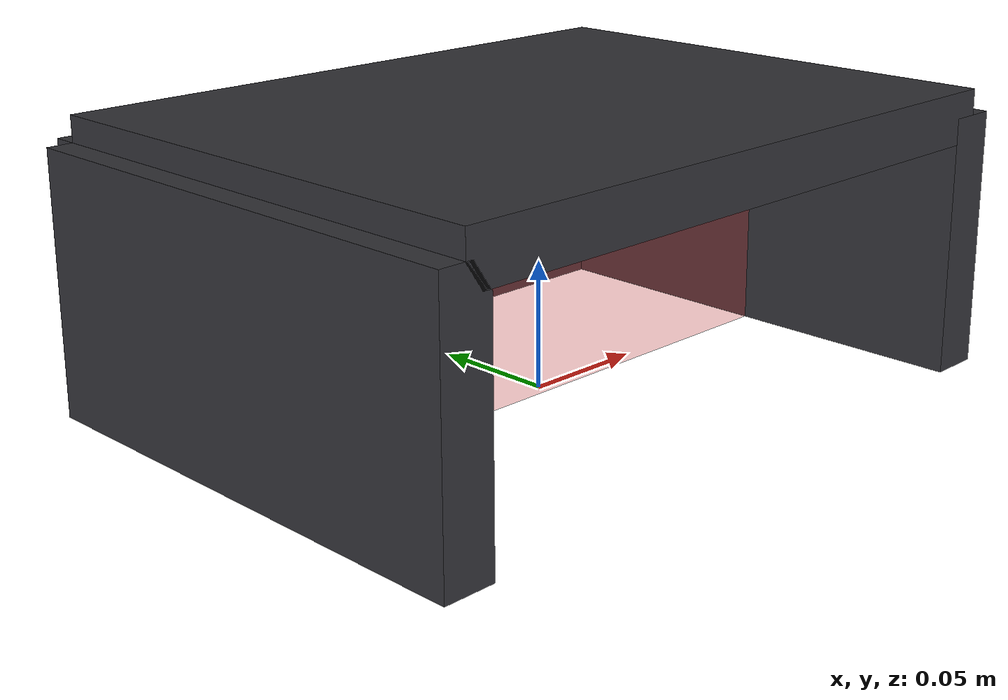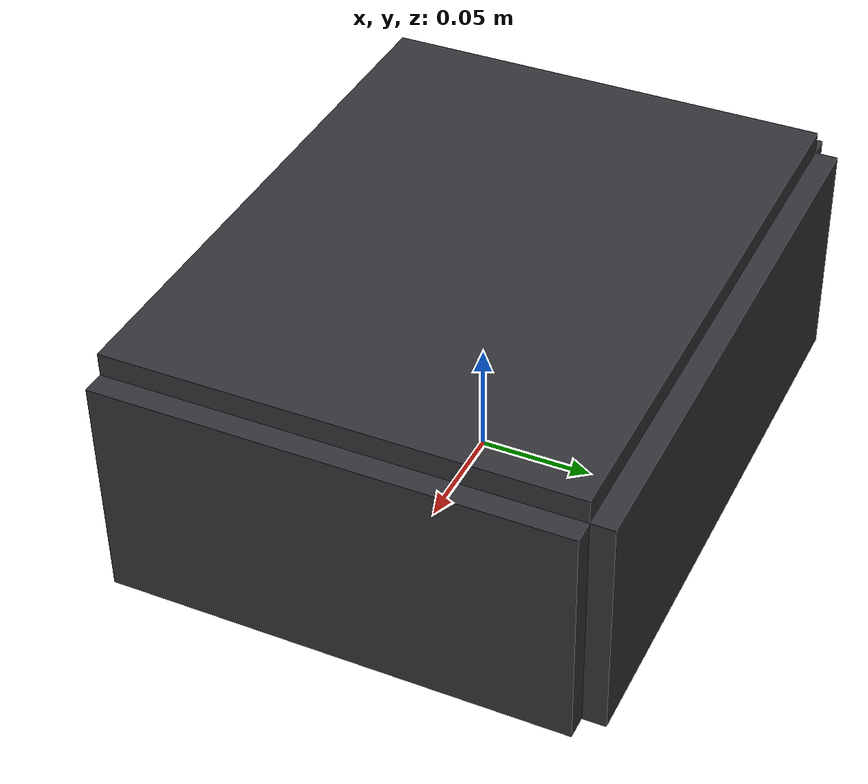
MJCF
<?xml version="1.0" encoding="utf-8"?>
<mujoco model="laser_cutter">
  <compiler angle="radian" autolimits="true"/>
  <default>
    <default class="body"><geom contype="1" conaffinity="1"/></default>
  </default>
  <worldbody>
    <body name="base">
      <geom type="box" size="0.13 0.01 0.05" pos="0 0.1 0.05" rgba="0.2 0.2 0.22 1" class="body"/>
      <geom type="box" size="0.01 0.1 0.05" pos="-0.13 0 0.05" rgba="0.2 0.2 0.22 1" class="body"/>
      <geom type="box" size="0.01 0.1 0.05" pos="0.13 0 0.05" rgba="0.2 0.2 0.22 1" class="body"/>
      <geom type="box" size="0.13 0.1 0.01" pos="0 0 0.1" rgba="0.2 0.2 0.22 1" class="body"/>
      <body name="door" pos="-0.13 0.0 0.05">
        <joint name="door_joint" type="hinge" axis="0 0 1" range="0 1.8" damping="0.6" frictionloss="0.3"/>
  <geom type="box" size="0.13 0.005 0.05" pos="0.13 0 0" rgba="0.9 0.2 0.2 0.3" class="body"/>
      </body>
    </body>
  </worldbody>
</mujoco>
